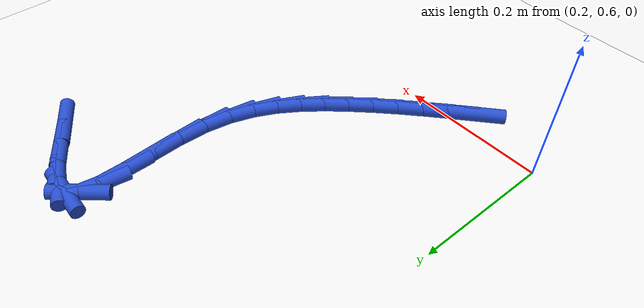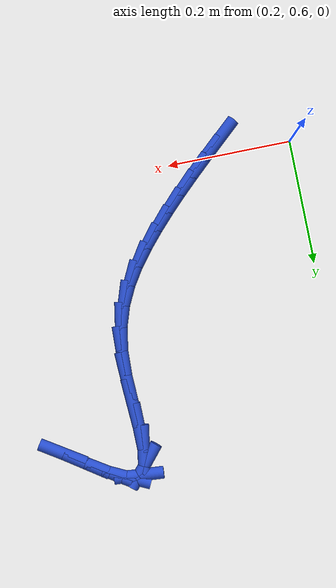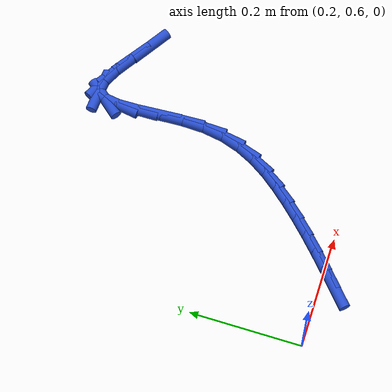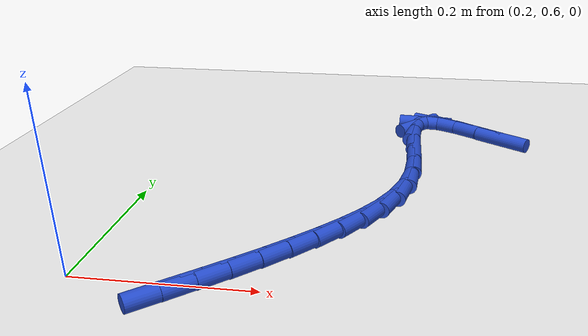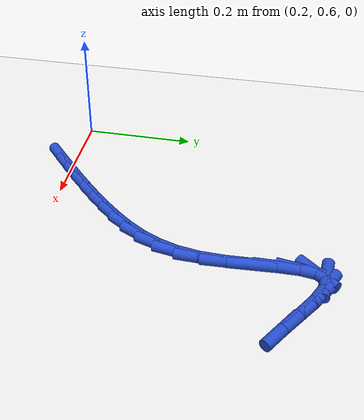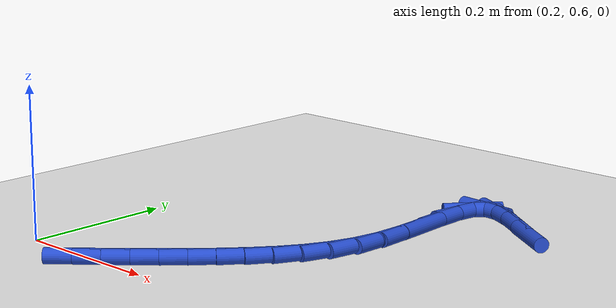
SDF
<sdf version="1.6">
 <world name="default">
  <model name="ground_plane">
   <static>1</static>
   <link name="link">
    <collision name="collision">
     <geometry><plane><normal>0 0 1</normal><size>100 100</size></plane></geometry>
     <surface><friction><ode><mu>100</mu><mu2>50</mu2></ode></friction></surface>
    </collision>
    <visual name="visual">
     <cast_shadows>0</cast_shadows>
     <geometry><plane><normal>0 0 1</normal><size>100 100</size></plane></geometry>
     <material>
      <script><uri>file://media/materials/scripts/gazebo.material</uri><name>Gazebo/WhiteGlow</name></script>
     </material>
    </visual>
   </link>
  </model>
  <model name="line">
   <link name="link_20">
    <pose>0.313304700186927 0.5760480917310401 0.01 0 1.57 0.728130226930549</pose>
    <collision name="collision">
     <geometry><cylinder><radius>0.01</radius><length>0.08</length></cylinder></geometry>
    </collision>
    <visual name="visual">
     <material>
      <script><name>Gazebo/Blue</name><uri>file://media/materials/scripts/gazebo.material</uri></script>
     </material>
     <geometry><cylinder><radius>0.01</radius><length>0.08</length></cylinder></geometry>
    </visual>
   </link>
   <link name="link_21">
    <pose>0.33969541510143525 0.5995768898000031 0.01 0 1.57 0.7396213593491705</pose>
    <collision name="collision">
     <geometry><cylinder><radius>0.01</radius><length>0.08</length></cylinder></geometry>
    </collision>
    <visual name="visual">
     <material>
      <script><name>Gazebo/Blue</name><uri>file://media/materials/scripts/gazebo.material</uri></script>
     </material>
     <geometry><cylinder><radius>0.01</radius><length>0.08</length></cylinder></geometry>
    </visual>
   </link>
   <link name="link_22">
    <pose>0.3656595833536944 0.623266478712623 0.01 0 1.57 0.7575974249426902</pose>
    <collision name="collision">
     <geometry><cylinder><radius>0.01</radius><length>0.08</length></cylinder></geometry>
    </collision>
    <visual name="visual">
     <material>
      <script><name>Gazebo/Blue</name><uri>file://media/materials/scripts/gazebo.material</uri></script>
     </material>
     <geometry><cylinder><radius>0.01</radius><length>0.08</length></cylinder></geometry>
    </visual>
   </link>
   <link name="link_23">
    <pose>0.39098390466572663 0.6472204733987437 0.01 0 1.57 0.7823412154644398</pose>
    <collision name="collision">
     <geometry><cylinder><radius>0.01</radius><length>0.08</length></cylinder></geometry>
    </collision>
    <visual name="visual">
     <material>
      <script><name>Gazebo/Blue</name><uri>file://media/materials/scripts/gazebo.material</uri></script>
     </material>
     <geometry><cylinder><radius>0.01</radius><length>0.08</length></cylinder></geometry>
    </visual>
   </link>
   <link name="link_24">
    <pose>0.4154550787595541 0.6715424887882091 0.01 0 1.57 0.8142070201734509</pose>
    <collision name="collision">
     <geometry><cylinder><radius>0.01</radius><length>0.08</length></cylinder></geometry>
    </collision>
    <visual name="visual">
     <material>
      <script><name>Gazebo/Blue</name><uri>file://media/materials/scripts/gazebo.material</uri></script>
     </material>
     <geometry><cylinder><radius>0.01</radius><length>0.08</length></cylinder></geometry>
    </visual>
   </link>
   <link name="link_25">
    <pose>0.4388598053571991 0.6963361398108631 0.01 0 1.57 0.8536455980159612</pose>
    <collision name="collision">
     <geometry><cylinder><radius>0.01</radius><length>0.08</length></cylinder></geometry>
    </collision>
    <visual name="visual">
     <material>
      <script><name>Gazebo/Blue</name><uri>file://media/materials/scripts/gazebo.material</uri></script>
     </material>
     <geometry><cylinder><radius>0.01</radius><length>0.08</length></cylinder></geometry>
    </visual>
   </link>
   <link name="link_26">
    <pose>0.460983694516362 0.7217064264555976 0.01 0 1.57 0.9087756777116334</pose>
    <collision name="collision">
     <geometry><cylinder><radius>0.01</radius><length>0.08</length></cylinder></geometry>
    </collision>
    <visual name="visual">
     <material>
      <script><name>Gazebo/Blue</name><uri>file://media/materials/scripts/gazebo.material</uri></script>
     </material>
     <geometry><cylinder><radius>0.01</radius><length>0.08</length></cylinder></geometry>
    </visual>
   </link>
   <link name="link_27">
    <pose>0.4814490130032026 0.7479659723798768 0.01 0 1.57 0.995281110305445</pose>
    <collision name="collision">
     <geometry><cylinder><radius>0.01</radius><length>0.08</length></cylinder></geometry>
    </collision>
    <visual name="visual">
     <material>
      <script><name>Gazebo/Blue</name><uri>file://media/materials/scripts/gazebo.material</uri></script>
     </material>
     <geometry><cylinder><radius>0.01</radius><length>0.08</length></cylinder></geometry>
    </visual>
   </link>
   <link name="link_28">
    <pose>0.499542258441653 0.7758541933086223 0.01 0 1.57 1.1121240185944894</pose>
    <collision name="collision">
     <geometry><cylinder><radius>0.01</radius><length>0.08</length></cylinder></geometry>
    </collision>
    <visual name="visual">
     <material>
      <script><name>Gazebo/Blue</name><uri>file://media/materials/scripts/gazebo.material</uri></script>
     </material>
     <geometry><cylinder><radius>0.01</radius><length>0.08</length></cylinder></geometry>
    </visual>
   </link>
   <link name="link_29">
    <pose>0.5145086319465483 0.8061629964565344 0.01 0 1.57 1.2514388526522295</pose>
    <collision name="collision">
     <geometry><cylinder><radius>0.01</radius><length>0.08</length></cylinder></geometry>
    </collision>
    <visual name="visual">
     <material>
      <script><name>Gazebo/Blue</name><uri>file://media/materials/scripts/gazebo.material</uri></script>
     </material>
     <geometry><cylinder><radius>0.01</radius><length>0.08</length></cylinder></geometry>
    </visual>
   </link>
   <link name="link_30">
    <pose>0.5255933346327225 0.8396842890383127 0.01 0 1.57 1.4006230942406581</pose>
    <collision name="collision">
     <geometry><cylinder><radius>0.01</radius><length>0.08</length></cylinder></geometry>
    </collision>
    <visual name="visual">
     <material>
      <script><name>Gazebo/Blue</name><uri>file://media/materials/scripts/gazebo.material</uri></script>
     </material>
     <geometry><cylinder><radius>0.01</radius><length>0.08</length></cylinder></geometry>
    </visual>
   </link>
   <link name="link_31">
    <pose>0.5320415676150105 0.8772099782686569 0.01 0 1.57 1.535913963452869</pose>
    <collision name="collision">
     <geometry><cylinder><radius>0.01</radius><length>0.08</length></cylinder></geometry>
    </collision>
    <visual name="visual">
     <material>
      <script><name>Gazebo/Blue</name><uri>file://media/materials/scripts/gazebo.material</uri></script>
     </material>
     <geometry><cylinder><radius>0.01</radius><length>0.08</length></cylinder></geometry>
    </visual>
   </link>
   <link name="link_32">
    <pose>0.5334997255463951 0.9189951764311219 0.01 0 1.57 -1.5315017738230157</pose>
    <collision name="collision">
     <geometry><cylinder><radius>0.01</radius><length>0.08</length></cylinder></geometry>
    </collision>
    <visual name="visual">
     <material>
      <script><name>Gazebo/Blue</name><uri>file://media/materials/scripts/gazebo.material</uri></script>
     </material>
     <geometry><cylinder><radius>0.01</radius><length>0.08</length></cylinder></geometry>
    </visual>
   </link>
   <link name="link_33">
    <pose>0.5317941284710648 0.9623782666274562 0.01 0 1.57 -1.5150600373453742</pose>
    <collision name="collision">
     <geometry><cylinder><radius>0.01</radius><length>0.08</length></cylinder></geometry>
    </collision>
    <visual name="visual">
     <material>
      <script><name>Gazebo/Blue</name><uri>file://media/materials/scripts/gazebo.material</uri></script>
     </material>
     <geometry><cylinder><radius>0.01</radius><length>0.08</length></cylinder></geometry>
    </visual>
   </link>
   <link name="link_34">
    <pose>0.5294879675997813 1.0037117020539847 0.01 0 1.57 -1.5611726398477452</pose>
    <collision name="collision">
     <geometry><cylinder><radius>0.01</radius><length>0.08</length></cylinder></geometry>
    </collision>
    <visual name="visual">
     <material>
      <script><name>Gazebo/Blue</name><uri>file://media/materials/scripts/gazebo.material</uri></script>
     </material>
     <geometry><cylinder><radius>0.01</radius><length>0.08</length></cylinder></geometry>
    </visual>
   </link>
   <link name="link_35">
    <pose>0.52914501250069 1.039347162067769 0.01 0 1.57 1.4129662551251418</pose>
    <collision name="collision">
     <geometry><cylinder><radius>0.01</radius><length>0.08</length></cylinder></geometry>
    </collision>
    <visual name="visual">
     <material>
      <script><name>Gazebo/Blue</name><uri>file://media/materials/scripts/gazebo.material</uri></script>
     </material>
     <geometry><cylinder><radius>0.01</radius><length>0.08</length></cylinder></geometry>
    </visual>
   </link>
   <link name="link_36">
    <pose>0.5333290327419363 1.0656363260258717 0.01 0 1.57 0.8676204023357369</pose>
    <collision name="collision">
     <geometry><cylinder><radius>0.01</radius><length>0.08</length></cylinder></geometry>
    </collision>
    <visual name="visual">
     <material>
      <script><name>Gazebo/Blue</name><uri>file://media/materials/scripts/gazebo.material</uri></script>
     </material>
     <geometry><cylinder><radius>0.01</radius><length>0.08</length></cylinder></geometry>
    </visual>
   </link>
   <link name="link_37">
    <pose>0.5446019231055773 1.0789340307001445 0.01 0 1.57 -0.07382589816377619</pose>
    <collision name="collision">
     <geometry><cylinder><radius>0.01</radius><length>0.08</length></cylinder></geometry>
    </collision>
    <visual name="visual">
     <material>
      <script><name>Gazebo/Blue</name><uri>file://media/materials/scripts/gazebo.material</uri></script>
     </material>
     <geometry><cylinder><radius>0.01</radius><length>0.08</length></cylinder></geometry>
    </visual>
   </link>
   <link name="link_38">
    <pose>0.5644130377800939 1.0774687944234675 0.01 0 1.57 -0.4504795299516295</pose>
    <collision name="collision">
     <geometry><cylinder><radius>0.01</radius><length>0.08</length></cylinder></geometry>
    </collision>
    <visual name="visual">
     <material>
      <script><name>Gazebo/Blue</name><uri>file://media/materials/scripts/gazebo.material</uri></script>
     </material>
     <geometry><cylinder><radius>0.01</radius><length>0.08</length></cylinder></geometry>
    </visual>
   </link>
   <link name="link_39">
    <pose>0.5912232917615687 1.0645021055105586 0.01 0 1.57 -0.5700971323501393</pose>
    <collision name="collision">
     <geometry><cylinder><radius>0.01</radius><length>0.08</length></cylinder></geometry>
    </collision>
    <visual name="visual">
     <material>
      <script><name>Gazebo/Blue</name><uri>file://media/materials/scripts/gazebo.material</uri></script>
     </material>
     <geometry><cylinder><radius>0.01</radius><length>0.08</length></cylinder></geometry>
    </visual>
   </link>
   <link name="link_40">
    <pose>0.6229969964794991 1.0441318055303217 0.01 0 1.57 -0.5987331556341006</pose>
    <collision name="collision">
     <geometry><cylinder><radius>0.01</radius><length>0.08</length></cylinder></geometry>
    </collision>
    <visual name="visual">
     <material>
      <script><name>Gazebo/Blue</name><uri>file://media/materials/scripts/gazebo.material</uri></script>
     </material>
     <geometry><cylinder><radius>0.01</radius><length>0.08</length></cylinder></geometry>
    </visual>
   </link>
   <link name="link_41">
    <pose>0.6576984633633826 1.0204557360516617 0.01 0 1.57 -0.571385898219003</pose>
    <collision name="collision">
     <geometry><cylinder><radius>0.01</radius><length>0.08</length></cylinder></geometry>
    </collision>
    <visual name="visual">
     <material>
      <script><name>Gazebo/Blue</name><uri>file://media/materials/scripts/gazebo.material</uri></script>
     </material>
     <geometry><cylinder><radius>0.01</radius><length>0.08</length></cylinder></geometry>
    </visual>
   </link>
  </model>
 </world>
</sdf>
